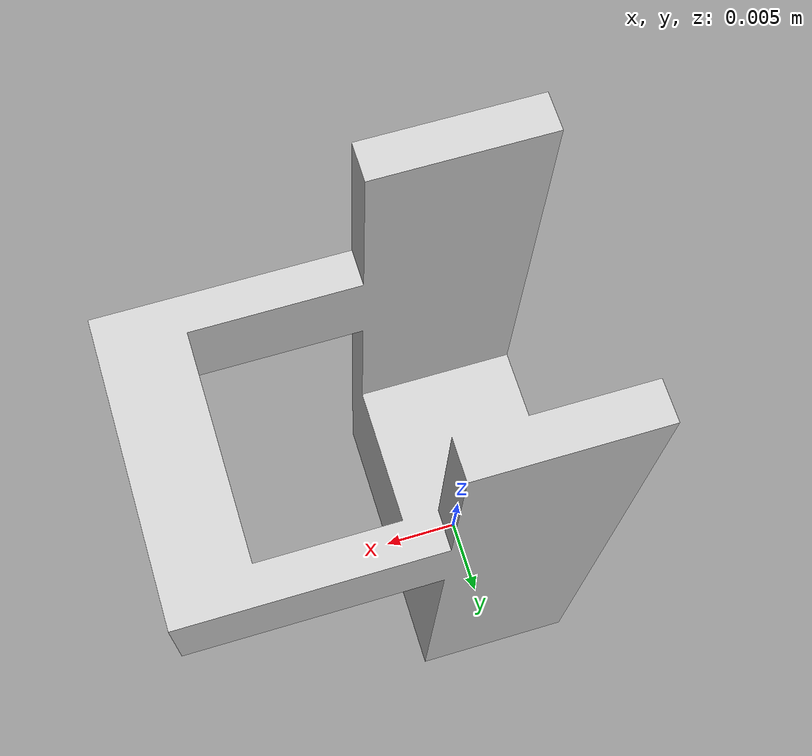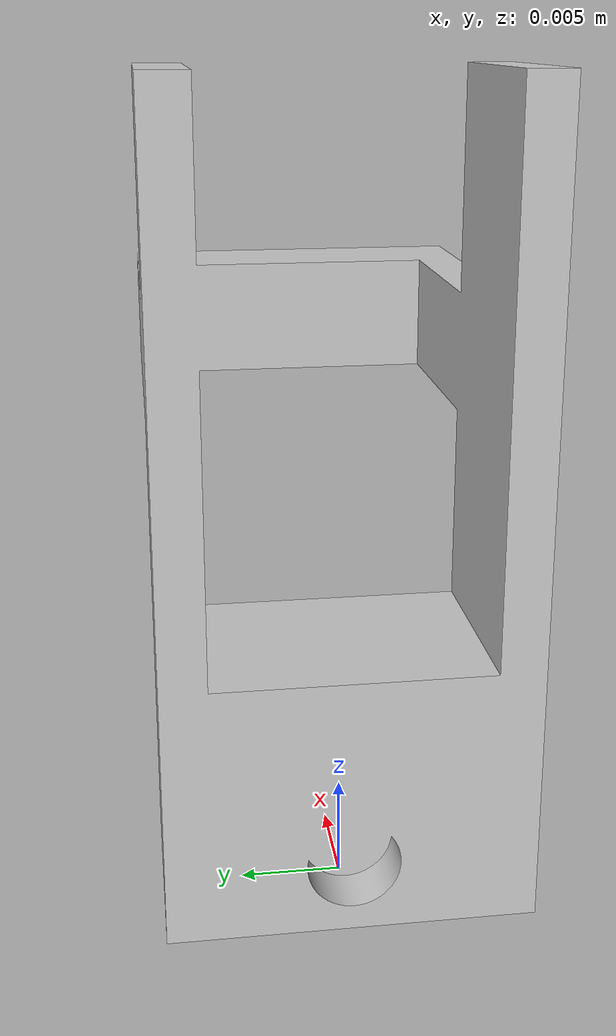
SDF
<?xml version="1.0" ?>
<sdf version="1.6">
  <model name="upper_leg">
    <static>false</static>
    <link name="upper_leg_link">
      <inertial auto="true" />
      <visual name="upper_leg_visual">
        <geometry>
          <mesh>
            <uri>model://meshes/upper_leg.dae</uri>
          </mesh>
        </geometry>
      </visual>
      <collision name="upper_leg_collision">
        <density>1240.0</density>
        <geometry>
          <mesh>
            <uri>model://meshes/upper_leg.dae</uri>
          </mesh>
        </geometry>
      </collision>
    </link>
  </model>
</sdf>
